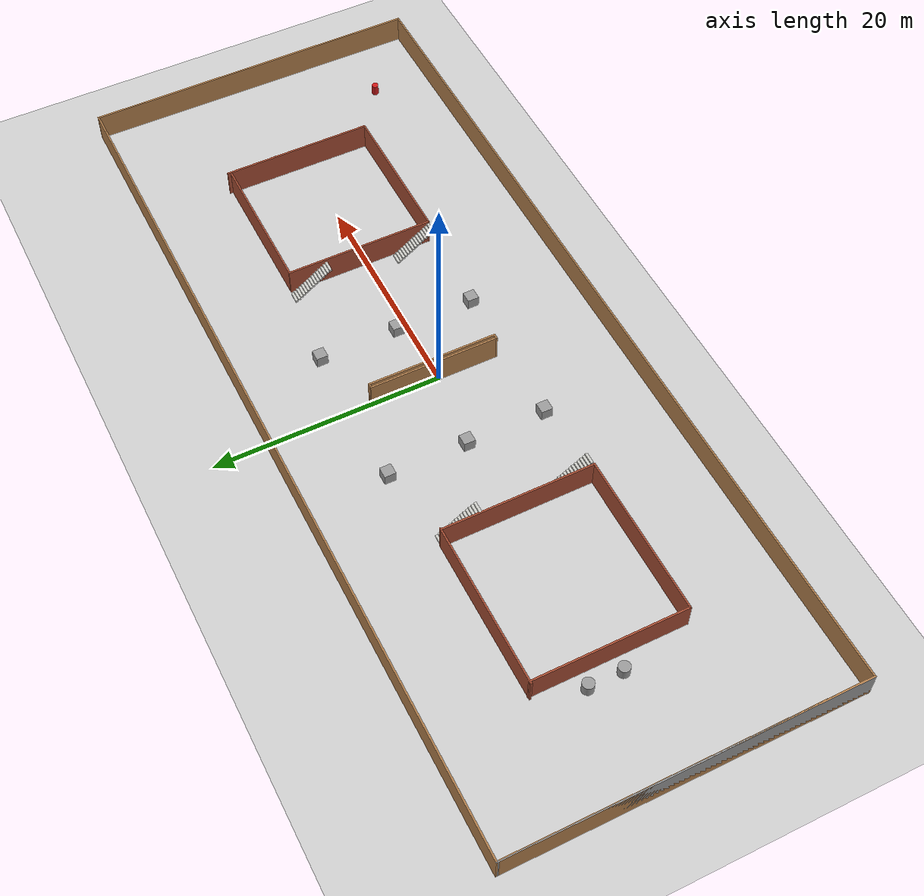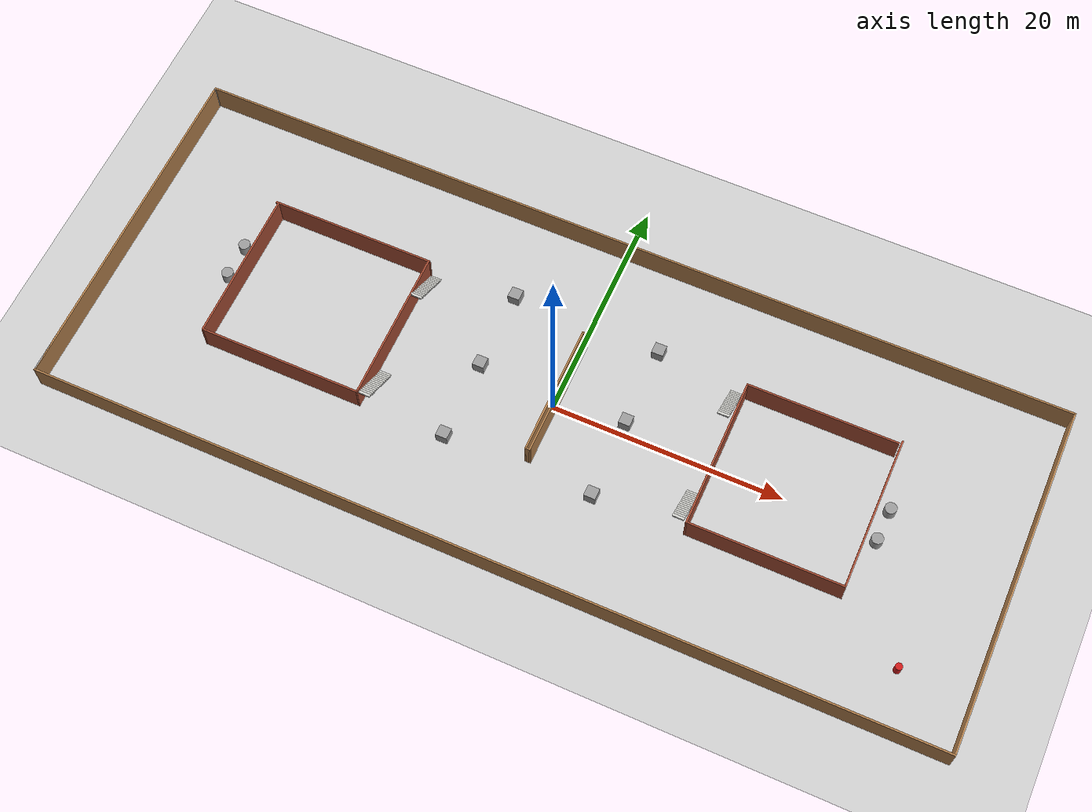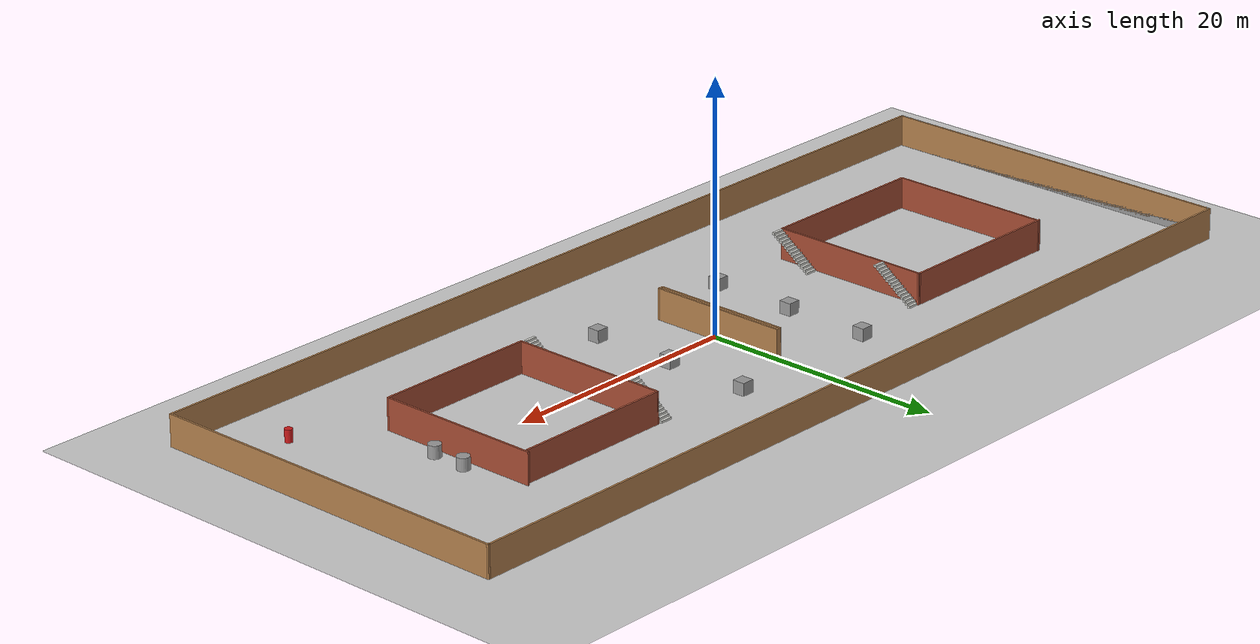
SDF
<sdf version="1.7">
 <world name="default">
  <physics name="4ms" type="ode">
   <max_step_size>0.004</max_step_size>
   <real_time_factor>1</real_time_factor>
   <real_time_update_rate>250</real_time_update_rate>
  </physics>
  <plugin name="gz::sim::systems::Physics" filename="gz-sim-physics-system"/>
  <plugin name="gz::sim::systems::UserCommands" filename="gz-sim-user-commands-system"/>
  <plugin name="gz::sim::systems::SceneBroadcaster" filename="gz-sim-scene-broadcaster-system"/>
  <plugin name="gz::sim::systems::Contact" filename="gz-sim-contact-system"/>
  <plugin filename="gz-sim-sensors-system" name="gz::sim::systems::Sensors">
   <render_engine>ogre2</render_engine>
  </plugin>
  <plugin filename="gz-sim-imu-system" name="gz::sim::systems::Imu"/>
  <plugin filename="gz-sim-navsat-system" name="gz::sim::systems::NavSat"/>
  <spherical_coordinates>
   <surface_model>EARTH_WGS84</surface_model>
   <world_frame_orientation>ENU</world_frame_orientation>
   <latitude_deg>47.478950</latitude_deg>
   <longitude_deg>19.057785</longitude_deg>
   <elevation>0</elevation>
   <heading_deg>0</heading_deg>
  </spherical_coordinates>
  <gravity>0 0 -9.8000000000000007</gravity>
  <magnetic_field>5.5644999999999998e-06 2.2875799999999999e-05 -4.2388400000000002e-05</magnetic_field>
  <atmosphere type="adiabatic"/>
  <scene>
   <ambient>0.400000006 0.400000006 0.400000006 1</ambient>
   <background>0.699999988 0.699999988 0.699999988 1</background>
   <shadows>true</shadows>
  </scene>
  <light name="sun" type="directional">
   <pose>0 0 10 0 -0 0</pose>
   <diffuse>0.8 0.8 0.8 1</diffuse>
   <specular>0.2 0.2 0.2 1</specular>
   <attenuation>
    <range>1000</range>
    <constant>0.9</constant>
    <linear>0.01</linear>
    <quadratic>0.001</quadratic>
   </attenuation>
   <direction>-0.5 0.1 -0.9</direction>
   <spot><inner_angle>0</inner_angle><outer_angle>0</outer_angle><falloff>0</falloff></spot>
  </light>
  <model name="ground_plane">
   <static>1</static>
   <link name="link">
    <collision name="collision">
     <geometry><plane><normal>0 0 1</normal><size>100 100</size></plane></geometry>
     <surface>
      <contact><collide_bitmask>65535</collide_bitmask></contact>
      <friction><ode><mu>100</mu><mu2>50</mu2></ode></friction>
     </surface>
    </collision>
    <visual name="visual">
     <cast_shadows>0</cast_shadows>
     <geometry><plane><normal>0 0 1</normal><size>100 100</size></plane></geometry>
     <material>
      <script><uri>file://media/materials/scripts/gazebo.material</uri><name>Gazebo/Grey</name></script>
     </material>
    </visual>
   </link>
  </model>
  <gravity>0 0 -9.8</gravity>
  <magnetic_field>6e-06 2.3e-05 -4.2e-05</magnetic_field>
  <atmosphere type="adiabatic"/>
  <physics type="ode">
   <max_step_size>0.001</max_step_size>
   <real_time_factor>1</real_time_factor>
   <real_time_update_rate>1000</real_time_update_rate>
  </physics>
  <scene><ambient>0.4 0.4 0.4 1</ambient><background>0.7 0.7 0.7 1</background><shadows>1</shadows></scene>
  <audio><device>default</device></audio>
  <spherical_coordinates>
   <surface_model>EARTH_WGS84</surface_model>
   <latitude_deg>0</latitude_deg>
   <longitude_deg>0</longitude_deg>
   <elevation>0</elevation>
   <heading_deg>0</heading_deg>
  </spherical_coordinates>
  <model name="World1">
   <pose>-0.188499 0.165577 0 0 -0 0</pose>
   <link name="Stairs_0">
    <visual name="Stairs_0_Visual_0">
     <pose>-13.679 -3.02062 0.083333 0 -0 0</pose>
     <geometry><box><size>1 0.233333 0.166667</size></box></geometry>
     <material>
      <script><uri>file://media/materials/scripts/gazebo.material</uri><name>Gazebo/CeilingTiled</name></script>
      <ambient>1 1 1 1</ambient>
     </material>
     <meta><layer>0</layer></meta>
    </visual>
    <collision name="Stairs_0_Collision_0">
     <geometry><box><size>1 0.233333 0.166667</size></box></geometry>
     <pose>-13.679 -3.02062 0.083333 0 -0 0</pose>
    </collision>
    <visual name="Stairs_0_Visual_1">
     <pose>-13.679 -3.25395 0.25 0 -0 0</pose>
     <geometry><box><size>1 0.233333 0.166667</size></box></geometry>
     <material>
      <script><uri>file://media/materials/scripts/gazebo.material</uri><name>Gazebo/CeilingTiled</name></script>
      <ambient>1 1 1 1</ambient>
     </material>
     <meta><layer>0</layer></meta>
    </visual>
    <collision name="Stairs_0_Collision_1">
     <geometry><box><size>1 0.233333 0.166667</size></box></geometry>
     <pose>-13.679 -3.25395 0.25 0 -0 0</pose>
    </collision>
    <visual name="Stairs_0_Visual_2">
     <pose>-13.679 -3.48728 0.416667 0 -0 0</pose>
     <geometry><box><size>1 0.233333 0.166667</size></box></geometry>
     <material>
      <script><uri>file://media/materials/scripts/gazebo.material</uri><name>Gazebo/CeilingTiled</name></script>
      <ambient>1 1 1 1</ambient>
     </material>
     <meta><layer>0</layer></meta>
    </visual>
    <collision name="Stairs_0_Collision_2">
     <geometry><box><size>1 0.233333 0.166667</size></box></geometry>
     <pose>-13.679 -3.48728 0.416667 0 -0 0</pose>
    </collision>
    <visual name="Stairs_0_Visual_3">
     <pose>-13.679 -3.72062 0.583333 0 -0 0</pose>
     <geometry><box><size>1 0.233333 0.166667</size></box></geometry>
     <material>
      <script><uri>file://media/materials/scripts/gazebo.material</uri><name>Gazebo/CeilingTiled</name></script>
      <ambient>1 1 1 1</ambient>
     </material>
     <meta><layer>0</layer></meta>
    </visual>
    <collision name="Stairs_0_Collision_3">
     <geometry><box><size>1 0.233333 0.166667</size></box></geometry>
     <pose>-13.679 -3.72062 0.583333 0 -0 0</pose>
    </collision>
    <visual name="Stairs_0_Visual_4">
     <pose>-13.679 -3.95395 0.75 0 -0 0</pose>
     <geometry><box><size>1 0.233333 0.166667</size></box></geometry>
     <material>
      <script><uri>file://media/materials/scripts/gazebo.material</uri><name>Gazebo/CeilingTiled</name></script>
      <ambient>1 1 1 1</ambient>
     </material>
     <meta><layer>0</layer></meta>
    </visual>
    <collision name="Stairs_0_Collision_4">
     <geometry><box><size>1 0.233333 0.166667</size></box></geometry>
     <pose>-13.679 -3.95395 0.75 0 -0 0</pose>
    </collision>
    <visual name="Stairs_0_Visual_5">
     <pose>-13.679 -4.18728 0.916667 0 -0 0</pose>
     <geometry><box><size>1 0.233333 0.166667</size></box></geometry>
     <material>
      <script><uri>file://media/materials/scripts/gazebo.material</uri><name>Gazebo/CeilingTiled</name></script>
      <ambient>1 1 1 1</ambient>
     </material>
     <meta><layer>0</layer></meta>
    </visual>
    <collision name="Stairs_0_Collision_5">
     <geometry><box><size>1 0.233333 0.166667</size></box></geometry>
     <pose>-13.679 -4.18728 0.916667 0 -0 0</pose>
    </collision>
    <visual name="Stairs_0_Visual_6">
     <pose>-13.679 -4.42061 1.08333 0 -0 0</pose>
     <geometry><box><size>1 0.233333 0.166667</size></box></geometry>
     <material>
      <script><uri>file://media/materials/scripts/gazebo.material</uri><name>Gazebo/CeilingTiled</name></script>
      <ambient>1 1 1 1</ambient>
     </material>
     <meta><layer>0</layer></meta>
    </visual>
    <collision name="Stairs_0_Collision_6">
     <geometry><box><size>1 0.233333 0.166667</size></box></geometry>
     <pose>-13.679 -4.42061 1.08333 0 -0 0</pose>
    </collision>
    <visual name="Stairs_0_Visual_7">
     <pose>-13.679 -4.65395 1.25 0 -0 0</pose>
     <geometry><box><size>1 0.233333 0.166667</size></box></geometry>
     <material>
      <script><uri>file://media/materials/scripts/gazebo.material</uri><name>Gazebo/CeilingTiled</name></script>
      <ambient>1 1 1 1</ambient>
     </material>
     <meta><layer>0</layer></meta>
    </visual>
    <collision name="Stairs_0_Collision_7">
     <geometry><box><size>1 0.233333 0.166667</size></box></geometry>
     <pose>-13.679 -4.65395 1.25 0 -0 0</pose>
    </collision>
    <visual name="Stairs_0_Visual_8">
     <pose>-13.679 -4.88728 1.41667 0 -0 0</pose>
     <geometry><box><size>1 0.233333 0.166667</size></box></geometry>
     <material>
      <script><uri>file://media/materials/scripts/gazebo.material</uri><name>Gazebo/CeilingTiled</name></script>
      <ambient>1 1 1 1</ambient>
     </material>
     <meta><layer>0</layer></meta>
    </visual>
    <collision name="Stairs_0_Collision_8">
     <geometry><box><size>1 0.233333 0.166667</size></box></geometry>
     <pose>-13.679 -4.88728 1.41667 0 -0 0</pose>
    </collision>
    <visual name="Stairs_0_Visual_9">
     <pose>-13.679 -5.12061 1.58333 0 -0 0</pose>
     <geometry><box><size>1 0.233333 0.166667</size></box></geometry>
     <material>
      <script><uri>file://media/materials/scripts/gazebo.material</uri><name>Gazebo/CeilingTiled</name></script>
      <ambient>1 1 1 1</ambient>
     </material>
     <meta><layer>0</layer></meta>
    </visual>
    <collision name="Stairs_0_Collision_9">
     <geometry><box><size>1 0.233333 0.166667</size></box></geometry>
     <pose>-13.679 -5.12061 1.58333 0 -0 0</pose>
    </collision>
    <visual name="Stairs_0_Visual_10">
     <pose>-13.679 -5.35395 1.75 0 -0 0</pose>
     <geometry><box><size>1 0.233333 0.166667</size></box></geometry>
     <material>
      <script><uri>file://media/materials/scripts/gazebo.material</uri><name>Gazebo/CeilingTiled</name></script>
      <ambient>1 1 1 1</ambient>
     </material>
     <meta><layer>0</layer></meta>
    </visual>
    <collision name="Stairs_0_Collision_10">
     <geometry><box><size>1 0.233333 0.166667</size></box></geometry>
     <pose>-13.679 -5.35395 1.75 0 -0 0</pose>
    </collision>
    <visual name="Stairs_0_Visual_11">
     <pose>-13.679 -5.58728 1.91667 0 -0 0</pose>
     <geometry><box><size>1 0.233333 0.166667</size></box></geometry>
     <material>
      <script><uri>file://media/materials/scripts/gazebo.material</uri><name>Gazebo/CeilingTiled</name></script>
      <ambient>1 1 1 1</ambient>
     </material>
     <meta><layer>0</layer></meta>
    </visual>
    <collision name="Stairs_0_Collision_11">
     <geometry><box><size>1 0.233333 0.166667</size></box></geometry>
     <pose>-13.679 -5.58728 1.91667 0 -0 0</pose>
    </collision>
    <visual name="Stairs_0_Visual_12">
     <pose>-13.679 -5.82062 2.08333 0 -0 0</pose>
     <geometry><box><size>1 0.233333 0.166667</size></box></geometry>
     <material>
      <script><uri>file://media/materials/scripts/gazebo.material</uri><name>Gazebo/CeilingTiled</name></script>
      <ambient>1 1 1 1</ambient>
     </material>
     <meta><layer>0</layer></meta>
    </visual>
    <collision name="Stairs_0_Collision_12">
     <geometry><box><size>1 0.233333 0.166667</size></box></geometry>
     <pose>-13.679 -5.82062 2.08333 0 -0 0</pose>
    </collision>
    <visual name="Stairs_0_Visual_13">
     <pose>-13.679 -6.05395 2.25 0 -0 0</pose>
     <geometry><box><size>1 0.233333 0.166667</size></box></geometry>
     <material>
      <script><uri>file://media/materials/scripts/gazebo.material</uri><name>Gazebo/CeilingTiled</name></script>
      <ambient>1 1 1 1</ambient>
     </material>
     <meta><layer>0</layer></meta>
    </visual>
    <collision name="Stairs_0_Collision_13">
     <geometry><box><size>1 0.233333 0.166667</size></box></geometry>
     <pose>-13.679 -6.05395 2.25 0 -0 0</pose>
    </collision>
    <visual name="Stairs_0_Visual_14">
     <pose>-13.679 -6.28728 2.41667 0 -0 0</pose>
     <geometry><box><size>1 0.233333 0.166667</size></box></geometry>
     <material>
      <script><uri>file://media/materials/scripts/gazebo.material</uri><name>Gazebo/CeilingTiled</name></script>
      <ambient>1 1 1 1</ambient>
     </material>
     <meta><layer>0</layer></meta>
    </visual>
    <collision name="Stairs_0_Collision_14">
     <geometry><box><size>1 0.233333 0.166667</size></box></geometry>
     <pose>-13.679 -6.28728 2.41667 0 -0 0</pose>
    </collision>
   </link>
   <link name="Stairs_1">
    <visual name="Stairs_1_Visual_0">
     <pose>-13.8205 6.81462 0.083333 0 -0 0</pose>
     <geometry><box><size>1 0.233333 0.166667</size></box></geometry>
     <material>
      <script><uri>file://media/materials/scripts/gazebo.material</uri><name>Gazebo/CeilingTiled</name></script>
      <ambient>1 1 1 1</ambient>
     </material>
     <meta><layer>0</layer></meta>
    </visual>
    <collision name="Stairs_1_Collision_0">
     <geometry><box><size>1 0.233333 0.166667</size></box></geometry>
     <pose>-13.8205 6.81462 0.083333 0 -0 0</pose>
    </collision>
    <visual name="Stairs_1_Visual_1">
     <pose>-13.8205 6.58128 0.25 0 -0 0</pose>
     <geometry><box><size>1 0.233333 0.166667</size></box></geometry>
     <material>
      <script><uri>file://media/materials/scripts/gazebo.material</uri><name>Gazebo/CeilingTiled</name></script>
      <ambient>1 1 1 1</ambient>
     </material>
     <meta><layer>0</layer></meta>
    </visual>
    <collision name="Stairs_1_Collision_1">
     <geometry><box><size>1 0.233333 0.166667</size></box></geometry>
     <pose>-13.8205 6.58128 0.25 0 -0 0</pose>
    </collision>
    <visual name="Stairs_1_Visual_2">
     <pose>-13.8205 6.34795 0.416667 0 -0 0</pose>
     <geometry><box><size>1 0.233333 0.166667</size></box></geometry>
     <material>
      <script><uri>file://media/materials/scripts/gazebo.material</uri><name>Gazebo/CeilingTiled</name></script>
      <ambient>1 1 1 1</ambient>
     </material>
     <meta><layer>0</layer></meta>
    </visual>
    <collision name="Stairs_1_Collision_2">
     <geometry><box><size>1 0.233333 0.166667</size></box></geometry>
     <pose>-13.8205 6.34795 0.416667 0 -0 0</pose>
    </collision>
    <visual name="Stairs_1_Visual_3">
     <pose>-13.8205 6.11462 0.583333 0 -0 0</pose>
     <geometry><box><size>1 0.233333 0.166667</size></box></geometry>
     <material>
      <script><uri>file://media/materials/scripts/gazebo.material</uri><name>Gazebo/CeilingTiled</name></script>
      <ambient>1 1 1 1</ambient>
     </material>
     <meta><layer>0</layer></meta>
    </visual>
    <collision name="Stairs_1_Collision_3">
     <geometry><box><size>1 0.233333 0.166667</size></box></geometry>
     <pose>-13.8205 6.11462 0.583333 0 -0 0</pose>
    </collision>
    <visual name="Stairs_1_Visual_4">
     <pose>-13.8205 5.88128 0.75 0 -0 0</pose>
     <geometry><box><size>1 0.233333 0.166667</size></box></geometry>
     <material>
      <script><uri>file://media/materials/scripts/gazebo.material</uri><name>Gazebo/CeilingTiled</name></script>
      <ambient>1 1 1 1</ambient>
     </material>
     <meta><layer>0</layer></meta>
    </visual>
    <collision name="Stairs_1_Collision_4">
     <geometry><box><size>1 0.233333 0.166667</size></box></geometry>
     <pose>-13.8205 5.88128 0.75 0 -0 0</pose>
    </collision>
    <visual name="Stairs_1_Visual_5">
     <pose>-13.8205 5.64795 0.916667 0 -0 0</pose>
     <geometry><box><size>1 0.233333 0.166667</size></box></geometry>
     <material>
      <script><uri>file://media/materials/scripts/gazebo.material</uri><name>Gazebo/CeilingTiled</name></script>
      <ambient>1 1 1 1</ambient>
     </material>
     <meta><layer>0</layer></meta>
    </visual>
    <collision name="Stairs_1_Collision_5">
     <geometry><box><size>1 0.233333 0.166667</size></box></geometry>
     <pose>-13.8205 5.64795 0.916667 0 -0 0</pose>
    </collision>
    <visual name="Stairs_1_Visual_6">
     <pose>-13.8205 5.41462 1.08333 0 -0 0</pose>
     <geometry><box><size>1 0.233333 0.166667</size></box></geometry>
     <material>
      <script><uri>file://media/materials/scripts/gazebo.material</uri><name>Gazebo/CeilingTiled</name></script>
      <ambient>1 1 1 1</ambient>
     </material>
     <meta><layer>0</layer></meta>
    </visual>
    <collision name="Stairs_1_Collision_6">
     <geometry><box><size>1 0.233333 0.166667</size></box></geometry>
     <pose>-13.8205 5.41462 1.08333 0 -0 0</pose>
    </collision>
    <visual name="Stairs_1_Visual_7">
     <pose>-13.8205 5.18128 1.25 0 -0 0</pose>
     <geometry><box><size>1 0.233333 0.166667</size></box></geometry>
     <material>
      <script><uri>file://media/materials/scripts/gazebo.material</uri><name>Gazebo/CeilingTiled</name></script>
      <ambient>1 1 1 1</ambient>
     </material>
     <meta><layer>0</layer></meta>
    </visual>
    <collision name="Stairs_1_Collision_7">
     <geometry><box><size>1 0.233333 0.166667</size></box></geometry>
     <pose>-13.8205 5.18128 1.25 0 -0 0</pose>
    </collision>
    <visual name="Stairs_1_Visual_8">
     <pose>-13.8205 4.94795 1.41667 0 -0 0</pose>
     <geometry><box><size>1 0.233333 0.166667</size></box></geometry>
     <material>
      <script><uri>file://media/materials/scripts/gazebo.material</uri><name>Gazebo/CeilingTiled</name></script>
      <ambient>1 1 1 1</ambient>
     </material>
     <meta><layer>0</layer></meta>
    </visual>
    <collision name="Stairs_1_Collision_8">
     <geometry><box><size>1 0.233333 0.166667</size></box></geometry>
     <pose>-13.8205 4.94795 1.41667 0 -0 0</pose>
    </collision>
    <visual name="Stairs_1_Visual_9">
     <pose>-13.8205 4.71462 1.58333 0 -0 0</pose>
     <geometry><box><size>1 0.233333 0.166667</size></box></geometry>
     <material>
      <script><uri>file://media/materials/scripts/gazebo.material</uri><name>Gazebo/CeilingTiled</name></script>
      <ambient>1 1 1 1</ambient>
     </material>
     <meta><layer>0</layer></meta>
    </visual>
    <collision name="Stairs_1_Collision_9">
     <geometry><box><size>1 0.233333 0.166667</size></box></geometry>
     <pose>-13.8205 4.71462 1.58333 0 -0 0</pose>
    </collision>
    <visual name="Stairs_1_Visual_10">
     <pose>-13.8205 4.48128 1.75 0 -0 0</pose>
     <geometry><box><size>1 0.233333 0.166667</size></box></geometry>
     <material>
      <script><uri>file://media/materials/scripts/gazebo.material</uri><name>Gazebo/CeilingTiled</name></script>
      <ambient>1 1 1 1</ambient>
     </material>
     <meta><layer>0</layer></meta>
    </visual>
    <collision name="Stairs_1_Collision_10">
     <geometry><box><size>1 0.233333 0.166667</size></box></geometry>
     <pose>-13.8205 4.48128 1.75 0 -0 0</pose>
    </collision>
    <visual name="Stairs_1_Visual_11">
     <pose>-13.8205 4.24795 1.91667 0 -0 0</pose>
     <geometry><box><size>1 0.233333 0.166667</size></box></geometry>
     <material>
      <script><uri>file://media/materials/scripts/gazebo.material</uri><name>Gazebo/CeilingTiled</name></script>
      <ambient>1 1 1 1</ambient>
     </material>
     <meta><layer>0</layer></meta>
    </visual>
    <collision name="Stairs_1_Collision_11">
     <geometry><box><size>1 0.233333 0.166667</size></box></geometry>
     <pose>-13.8205 4.24795 1.91667 0 -0 0</pose>
    </collision>
    <visual name="Stairs_1_Visual_12">
     <pose>-13.8205 4.01462 2.08333 0 -0 0</pose>
     <geometry><box><size>1 0.233333 0.166667</size></box></geometry>
     <material>
      <script><uri>file://media/materials/scripts/gazebo.material</uri><name>Gazebo/CeilingTiled</name></script>
      <ambient>1 1 1 1</ambient>
     </material>
     <meta><layer>0</layer></meta>
    </visual>
    <collision name="Stairs_1_Collision_12">
     <geometry><box><size>1 0.233333 0.166667</size></box></geometry>
     <pose>-13.8205 4.01462 2.08333 0 -0 0</pose>
    </collision>
    <visual name="Stairs_1_Visual_13">
     <pose>-13.8205 3.78128 2.25 0 -0 0</pose>
     <geometry><box><size>1 0.233333 0.166667</size></box></geometry>
     <material>
      <script><uri>file://media/materials/scripts/gazebo.material</uri><name>Gazebo/CeilingTiled</name></script>
      <ambient>1 1 1 1</ambient>
     </material>
     <meta><layer>0</layer></meta>
    </visual>
    <collision name="Stairs_1_Collision_13">
     <geometry><box><size>1 0.233333 0.166667</size></box></geometry>
     <pose>-13.8205 3.78128 2.25 0 -0 0</pose>
    </collision>
    <visual name="Stairs_1_Visual_14">
     <pose>-13.8205 3.54795 2.41667 0 -0 0</pose>
     <geometry><box><size>1 0.233333 0.166667</size></box></geometry>
     <material>
      <script><uri>file://media/materials/scripts/gazebo.material</uri><name>Gazebo/CeilingTiled</name></script>
      <ambient>1 1 1 1</ambient>
     </material>
     <meta><layer>0</layer></meta>
    </visual>
    <collision name="Stairs_1_Collision_14">
     <geometry><box><size>1 0.233333 0.166667</size></box></geometry>
     <pose>-13.8205 3.54795 2.41667 0 -0 0</pose>
    </collision>
   </link>
   <link name="Stairs_2">
    <visual name="Stairs_2_Visual_0">
     <pose>13.3502 7.02689 0.083333 0 -0 0</pose>
     <geometry><box><size>1 0.233333 0.166667</size></box></geometry>
     <material>
      <script><uri>file://media/materials/scripts/gazebo.material</uri><name>Gazebo/CeilingTiled</name></script>
      <ambient>1 1 1 1</ambient>
     </material>
     <meta><layer>0</layer></meta>
    </visual>
    <collision name="Stairs_2_Collision_0">
     <geometry><box><size>1 0.233333 0.166667</size></box></geometry>
     <pose>13.3502 7.02689 0.083333 0 -0 0</pose>
    </collision>
    <visual name="Stairs_2_Visual_1">
     <pose>13.3502 6.79355 0.25 0 -0 0</pose>
     <geometry><box><size>1 0.233333 0.166667</size></box></geometry>
     <material>
      <script><uri>file://media/materials/scripts/gazebo.material</uri><name>Gazebo/CeilingTiled</name></script>
      <ambient>1 1 1 1</ambient>
     </material>
     <meta><layer>0</layer></meta>
    </visual>
    <collision name="Stairs_2_Collision_1">
     <geometry><box><size>1 0.233333 0.166667</size></box></geometry>
     <pose>13.3502 6.79355 0.25 0 -0 0</pose>
    </collision>
    <visual name="Stairs_2_Visual_2">
     <pose>13.3502 6.56022 0.416667 0 -0 0</pose>
     <geometry><box><size>1 0.233333 0.166667</size></box></geometry>
     <material>
      <script><uri>file://media/materials/scripts/gazebo.material</uri><name>Gazebo/CeilingTiled</name></script>
      <ambient>1 1 1 1</ambient>
     </material>
     <meta><layer>0</layer></meta>
    </visual>
    <collision name="Stairs_2_Collision_2">
     <geometry><box><size>1 0.233333 0.166667</size></box></geometry>
     <pose>13.3502 6.56022 0.416667 0 -0 0</pose>
    </collision>
    <visual name="Stairs_2_Visual_3">
     <pose>13.3502 6.32689 0.583333 0 -0 0</pose>
     <geometry><box><size>1 0.233333 0.166667</size></box></geometry>
     <material>
      <script><uri>file://media/materials/scripts/gazebo.material</uri><name>Gazebo/CeilingTiled</name></script>
      <ambient>1 1 1 1</ambient>
     </material>
     <meta><layer>0</layer></meta>
    </visual>
    <collision name="Stairs_2_Collision_3">
     <geometry><box><size>1 0.233333 0.166667</size></box></geometry>
     <pose>13.3502 6.32689 0.583333 0 -0 0</pose>
    </collision>
    <visual name="Stairs_2_Visual_4">
     <pose>13.3502 6.09355 0.75 0 -0 0</pose>
     <geometry><box><size>1 0.233333 0.166667</size></box></geometry>
     <material>
      <script><uri>file://media/materials/scripts/gazebo.material</uri><name>Gazebo/CeilingTiled</name></script>
      <ambient>1 1 1 1</ambient>
     </material>
     <meta><layer>0</layer></meta>
    </visual>
    <collision name="Stairs_2_Collision_4">
     <geometry><box><size>1 0.233333 0.166667</size></box></geometry>
     <pose>13.3502 6.09355 0.75 0 -0 0</pose>
    </collision>
    <visual name="Stairs_2_Visual_5">
     <pose>13.3502 5.86022 0.916667 0 -0 0</pose>
     <geometry><box><size>1 0.233333 0.166667</size></box></geometry>
     <material>
      <script><uri>file://media/materials/scripts/gazebo.material</uri><name>Gazebo/CeilingTiled</name></script>
      <ambient>1 1 1 1</ambient>
     </material>
     <meta><layer>0</layer></meta>
    </visual>
    <collision name="Stairs_2_Collision_5">
     <geometry><box><size>1 0.233333 0.166667</size></box></geometry>
     <pose>13.3502 5.86022 0.916667 0 -0 0</pose>
    </collision>
    <visual name="Stairs_2_Visual_6">
     <pose>13.3502 5.62689 1.08333 0 -0 0</pose>
     <geometry><box><size>1 0.233333 0.166667</size></box></geometry>
     <material>
      <script><uri>file://media/materials/scripts/gazebo.material</uri><name>Gazebo/CeilingTiled</name></script>
      <ambient>1 1 1 1</ambient>
     </material>
     <meta><layer>0</layer></meta>
    </visual>
    <collision name="Stairs_2_Collision_6">
     <geometry><box><size>1 0.233333 0.166667</size></box></geometry>
     <pose>13.3502 5.62689 1.08333 0 -0 0</pose>
    </collision>
    <visual name="Stairs_2_Visual_7">
     <pose>13.3502 5.39355 1.25 0 -0 0</pose>
     <geometry><box><size>1 0.233333 0.166667</size></box></geometry>
     <material>
      <script><uri>file://media/materials/scripts/gazebo.material</uri><name>Gazebo/CeilingTiled</name></script>
      <ambient>1 1 1 1</ambient>
     </material>
     <meta><layer>0</layer></meta>
    </visual>
    <collision name="Stairs_2_Collision_7">
     <geometry><box><size>1 0.233333 0.166667</size></box></geometry>
     <pose>13.3502 5.39355 1.25 0 -0 0</pose>
    </collision>
    <visual name="Stairs_2_Visual_8">
     <pose>13.3502 5.16022 1.41667 0 -0 0</pose>
     <geometry><box><size>1 0.233333 0.166667</size></box></geometry>
     <material>
      <script><uri>file://media/materials/scripts/gazebo.material</uri><name>Gazebo/CeilingTiled</name></script>
      <ambient>1 1 1 1</ambient>
     </material>
     <meta><layer>0</layer></meta>
    </visual>
    <collision name="Stairs_2_Collision_8">
     <geometry><box><size>1 0.233333 0.166667</size></box></geometry>
     <pose>13.3502 5.16022 1.41667 0 -0 0</pose>
    </collision>
    <visual name="Stairs_2_Visual_9">
     <pose>13.3502 4.92689 1.58333 0 -0 0</pose>
     <geometry><box><size>1 0.233333 0.166667</size></box></geometry>
     <material>
      <script><uri>file://media/materials/scripts/gazebo.material</uri><name>Gazebo/CeilingTiled</name></script>
      <ambient>1 1 1 1</ambient>
     </material>
     <meta><layer>0</layer></meta>
    </visual>
    <collision name="Stairs_2_Collision_9">
     <geometry><box><size>1 0.233333 0.166667</size></box></geometry>
     <pose>13.3502 4.92689 1.58333 0 -0 0</pose>
    </collision>
    <visual name="Stairs_2_Visual_10">
     <pose>13.3502 4.69355 1.75 0 -0 0</pose>
     <geometry><box><size>1 0.233333 0.166667</size></box></geometry>
     <material>
      <script><uri>file://media/materials/scripts/gazebo.material</uri><name>Gazebo/CeilingTiled</name></script>
      <ambient>1 1 1 1</ambient>
     </material>
     <meta><layer>0</layer></meta>
    </visual>
    <collision name="Stairs_2_Collision_10">
     <geometry><box><size>1 0.233333 0.166667</size></box></geometry>
     <pose>13.3502 4.69355 1.75 0 -0 0</pose>
    </collision>
    <visual name="Stairs_2_Visual_11">
     <pose>13.3502 4.46022 1.91667 0 -0 0</pose>
     <geometry><box><size>1 0.233333 0.166667</size></box></geometry>
     <material>
      <script><uri>file://media/materials/scripts/gazebo.material</uri><name>Gazebo/CeilingTiled</name></script>
      <ambient>1 1 1 1</ambient>
     </material>
     <meta><layer>0</layer></meta>
    </visual>
    <collision name="Stairs_2_Collision_11">
     <geometry><box><size>1 0.233333 0.166667</size></box></geometry>
     <pose>13.3502 4.46022 1.91667 0 -0 0</pose>
    </collision>
    <visual name="Stairs_2_Visual_12">
     <pose>13.3502 4.22689 2.08333 0 -0 0</pose>
     <geometry><box><size>1 0.233333 0.166667</size></box></geometry>
     <material>
      <script><uri>file://media/materials/scripts/gazebo.material</uri><name>Gazebo/CeilingTiled</name></script>
      <ambient>1 1 1 1</ambient>
     </material>
     <meta><layer>0</layer></meta>
    </visual>
    <collision name="Stairs_2_Collision_12">
     <geometry><box><size>1 0.233333 0.166667</size></box></geometry>
     <pose>13.3502 4.22689 2.08333 0 -0 0</pose>
    </collision>
    <visual name="Stairs_2_Visual_13">
     <pose>13.3502 3.99355 2.25 0 -0 0</pose>
     <geometry><box><size>1 0.233333 0.166667</size></box></geometry>
     <material>
      <script><uri>file://media/materials/scripts/gazebo.material</uri><name>Gazebo/CeilingTiled</name></script>
      <ambient>1 1 1 1</ambient>
     </material>
     <meta><layer>0</layer></meta>
    </visual>
    <collision name="Stairs_2_Collision_13">
     <geometry><box><size>1 0.233333 0.166667</size></box></geometry>
     <pose>13.3502 3.99355 2.25 0 -0 0</pose>
    </collision>
    <visual name="Stairs_2_Visual_14">
     <pose>13.3502 3.76022 2.41667 0 -0 0</pose>
     <geometry><box><size>1 0.233333 0.166667</size></box></geometry>
     <material>
      <script><uri>file://media/materials/scripts/gazebo.material</uri><name>Gazebo/CeilingTiled</name></script>
      <ambient>1 1 1 1</ambient>
     </material>
     <meta><layer>0</layer></meta>
    </visual>
    <collision name="Stairs_2_Collision_14">
     <geometry><box><size>1 0.233333 0.166667</size></box></geometry>
     <pose>13.3502 3.76022 2.41667 0 -0 0</pose>
    </collision>
   </link>
   <link name="Stairs_3">
    <visual name="Stairs_3_Visual_0">
     <pose>13.4209 -2.66683 0.083333 0 -0 0</pose>
     <geometry><box><size>1 0.233333 0.166667</size></box></geometry>
     <material>
      <script><uri>file://media/materials/scripts/gazebo.material</uri><name>Gazebo/CeilingTiled</name></script>
      <ambient>1 1 1 1</ambient>
     </material>
     <meta><layer>0</layer></meta>
    </visual>
    <collision name="Stairs_3_Collision_0">
     <geometry><box><size>1 0.233333 0.166667</size></box></geometry>
     <pose>13.4209 -2.66683 0.083333 0 -0 0</pose>
    </collision>
    <visual name="Stairs_3_Visual_1">
     <pose>13.4209 -2.90016 0.25 0 -0 0</pose>
     <geometry><box><size>1 0.233333 0.166667</size></box></geometry>
     <material>
      <script><uri>file://media/materials/scripts/gazebo.material</uri><name>Gazebo/CeilingTiled</name></script>
      <ambient>1 1 1 1</ambient>
     </material>
     <meta><layer>0</layer></meta>
    </visual>
    <collision name="Stairs_3_Collision_1">
     <geometry><box><size>1 0.233333 0.166667</size></box></geometry>
     <pose>13.4209 -2.90016 0.25 0 -0 0</pose>
    </collision>
    <visual name="Stairs_3_Visual_2">
     <pose>13.4209 -3.1335 0.416667 0 -0 0</pose>
     <geometry><box><size>1 0.233333 0.166667</size></box></geometry>
     <material>
      <script><uri>file://media/materials/scripts/gazebo.material</uri><name>Gazebo/CeilingTiled</name></script>
      <ambient>1 1 1 1</ambient>
     </material>
     <meta><layer>0</layer></meta>
    </visual>
    <collision name="Stairs_3_Collision_2">
     <geometry><box><size>1 0.233333 0.166667</size></box></geometry>
     <pose>13.4209 -3.1335 0.416667 0 -0 0</pose>
    </collision>
    <visual name="Stairs_3_Visual_3">
     <pose>13.4209 -3.36683 0.583333 0 -0 0</pose>
     <geometry><box><size>1 0.233333 0.166667</size></box></geometry>
     <material>
      <script><uri>file://media/materials/scripts/gazebo.material</uri><name>Gazebo/CeilingTiled</name></script>
      <ambient>1 1 1 1</ambient>
     </material>
     <meta><layer>0</layer></meta>
    </visual>
    <collision name="Stairs_3_Collision_3">
     <geometry><box><size>1 0.233333 0.166667</size></box></geometry>
     <pose>13.4209 -3.36683 0.583333 0 -0 0</pose>
    </collision>
    <visual name="Stairs_3_Visual_4">
     <pose>13.4209 -3.60016 0.75 0 -0 0</pose>
     <geometry><box><size>1 0.233333 0.166667</size></box></geometry>
     <material>
      <script><uri>file://media/materials/scripts/gazebo.material</uri><name>Gazebo/CeilingTiled</name></script>
      <ambient>1 1 1 1</ambient>
     </material>
     <meta><layer>0</layer></meta>
    </visual>
    <collision name="Stairs_3_Collision_4">
     <geometry><box><size>1 0.233333 0.166667</size></box></geometry>
     <pose>13.4209 -3.60016 0.75 0 -0 0</pose>
    </collision>
    <visual name="Stairs_3_Visual_5">
     <pose>13.4209 -3.8335 0.916667 0 -0 0</pose>
     <geometry><box><size>1 0.233333 0.166667</size></box></geometry>
     <material>
      <script><uri>file://media/materials/scripts/gazebo.material</uri><name>Gazebo/CeilingTiled</name></script>
      <ambient>1 1 1 1</ambient>
     </material>
     <meta><layer>0</layer></meta>
    </visual>
    <collision name="Stairs_3_Collision_5">
     <geometry><box><size>1 0.233333 0.166667</size></box></geometry>
     <pose>13.4209 -3.8335 0.916667 0 -0 0</pose>
    </collision>
    <visual name="Stairs_3_Visual_6">
     <pose>13.4209 -4.06683 1.08333 0 -0 0</pose>
     <geometry><box><size>1 0.233333 0.166667</size></box></geometry>
     <material>
      <script><uri>file://media/materials/scripts/gazebo.material</uri><name>Gazebo/CeilingTiled</name></script>
      <ambient>1 1 1 1</ambient>
     </material>
     <meta><layer>0</layer></meta>
    </visual>
    <collision name="Stairs_3_Collision_6">
     <geometry><box><size>1 0.233333 0.166667</size></box></geometry>
     <pose>13.4209 -4.06683 1.08333 0 -0 0</pose>
    </collision>
    <visual name="Stairs_3_Visual_7">
     <pose>13.4209 -4.30016 1.25 0 -0 0</pose>
     <geometry><box><size>1 0.233333 0.166667</size></box></geometry>
     <material>
      <script><uri>file://media/materials/scripts/gazebo.material</uri><name>Gazebo/CeilingTiled</name></script>
      <ambient>1 1 1 1</ambient>
     </material>
     <meta><layer>0</layer></meta>
    </visual>
    <collision name="Stairs_3_Collision_7">
     <geometry><box><size>1 0.233333 0.166667</size></box></geometry>
     <pose>13.4209 -4.30016 1.25 0 -0 0</pose>
    </collision>
    <visual name="Stairs_3_Visual_8">
     <pose>13.4209 -4.5335 1.41667 0 -0 0</pose>
     <geometry><box><size>1 0.233333 0.166667</size></box></geometry>
     <material>
      <script><uri>file://media/materials/scripts/gazebo.material</uri><name>Gazebo/CeilingTiled</name></script>
      <ambient>1 1 1 1</ambient>
     </material>
     <meta><layer>0</layer></meta>
    </visual>
    <collision name="Stairs_3_Collision_8">
     <geometry><box><size>1 0.233333 0.166667</size></box></geometry>
     <pose>13.4209 -4.5335 1.41667 0 -0 0</pose>
    </collision>
    <visual name="Stairs_3_Visual_9">
     <pose>13.4209 -4.76683 1.58333 0 -0 0</pose>
     <geometry><box><size>1 0.233333 0.166667</size></box></geometry>
     <material>
      <script><uri>file://media/materials/scripts/gazebo.material</uri><name>Gazebo/CeilingTiled</name></script>
      <ambient>1 1 1 1</ambient>
     </material>
     <meta><layer>0</layer></meta>
    </visual>
    <collision name="Stairs_3_Collision_9">
     <geometry><box><size>1 0.233333 0.166667</size></box></geometry>
     <pose>13.4209 -4.76683 1.58333 0 -0 0</pose>
    </collision>
    <visual name="Stairs_3_Visual_10">
     <pose>13.4209 -5.00016 1.75 0 -0 0</pose>
     <geometry><box><size>1 0.233333 0.166667</size></box></geometry>
     <material>
      <script><uri>file://media/materials/scripts/gazebo.material</uri><name>Gazebo/CeilingTiled</name></script>
      <ambient>1 1 1 1</ambient>
     </material>
     <meta><layer>0</layer></meta>
    </visual>
    <collision name="Stairs_3_Collision_10">
     <geometry><box><size>1 0.233333 0.166667</size></box></geometry>
     <pose>13.4209 -5.00016 1.75 0 -0 0</pose>
    </collision>
    <visual name="Stairs_3_Visual_11">
     <pose>13.4209 -5.2335 1.91667 0 -0 0</pose>
     <geometry><box><size>1 0.233333 0.166667</size></box></geometry>
     <material>
      <script><uri>file://media/materials/scripts/gazebo.material</uri><name>Gazebo/CeilingTiled</name></script>
      <ambient>1 1 1 1</ambient>
     </material>
     <meta><layer>0</layer></meta>
    </visual>
    <collision name="Stairs_3_Collision_11">
     <geometry><box><size>1 0.233333 0.166667</size></box></geometry>
     <pose>13.4209 -5.2335 1.91667 0 -0 0</pose>
    </collision>
    <visual name="Stairs_3_Visual_12">
     <pose>13.4209 -5.46683 2.08333 0 -0 0</pose>
     <geometry><box><size>1 0.233333 0.166667</size></box></geometry>
     <material>
      <script><uri>file://media/materials/scripts/gazebo.material</uri><name>Gazebo/CeilingTiled</name></script>
      <ambient>1 1 1 1</ambient>
     </material>
     <meta><layer>0</layer></meta>
    </visual>
    <collision name="Stairs_3_Collision_12">
     <geometry><box><size>1 0.233333 0.166667</size></box></geometry>
     <pose>13.4209 -5.46683 2.08333 0 -0 0</pose>
    </collision>
    <visual name="Stairs_3_Visual_13">
     <pose>13.4209 -5.70016 2.25 0 -0 0</pose>
     <geometry><box><size>1 0.233333 0.166667</size></box></geometry>
     <material>
      <script><uri>file://media/materials/scripts/gazebo.material</uri><name>Gazebo/CeilingTiled</name></script>
      <ambient>1 1 1 1</ambient>
     </material>
     <meta><layer>0</layer></meta>
    </visual>
    <collision name="Stairs_3_Collision_13">
     <geometry><box><size>1 0.233333 0.166667</size></box></geometry>
     <pose>13.4209 -5.70016 2.25 0 -0 0</pose>
    </collision>
    <visual name="Stairs_3_Visual_14">
     <pose>13.4209 -5.9335 2.41667 0 -0 0</pose>
     <geometry><box><size>1 0.233333 0.166667</size></box></geometry>
     <material>
      <script><uri>file://media/materials/scripts/gazebo.material</uri><name>Gazebo/CeilingTiled</name></script>
      <ambient>1 1 1 1</ambient>
     </material>
     <meta><layer>0</layer></meta>
    </visual>
    <collision name="Stairs_3_Collision_14">
     <geometry><box><size>1 0.233333 0.166667</size></box></geometry>
     <pose>13.4209 -5.9335 2.41667 0 -0 0</pose>
    </collision>
   </link>
   <link name="Wall_22">
    <collision name="Wall_22_Collision">
     <geometry><box><size>30.25 0.15 2.5</size></box></geometry>
     <pose>0 0 1.25 0 -0 0</pose>
    </collision>
    <visual name="Wall_22_Visual">
     <pose>0 0 1.25 0 -0 0</pose>
     <geometry><box><size>30.25 0.15 2.5</size></box></geometry>
     <material>
      <script><uri>file://media/materials/scripts/gazebo.material</uri><name>Gazebo/Wood</name></script>
      <ambient>1 1 1 1</ambient>
     </material>
     <meta><layer>0</layer></meta>
    </visual>
    <pose>-39.05 -0.125 0 0 -0 -1.5708</pose>
   </link>
   <link name="Wall_23">
    <collision name="Wall_23_Collision">
     <geometry><box><size>78.25 0.15 2.5</size></box></geometry>
     <pose>0 0 1.25 0 -0 0</pose>
    </collision>
    <visual name="Wall_23_Visual">
     <pose>0 0 1.25 0 -0 0</pose>
     <geometry><box><size>78.25 0.15 2.5</size></box></geometry>
     <material>
      <script><uri>file://media/materials/scripts/gazebo.material</uri><name>Gazebo/Wood</name></script>
      <ambient>1 1 1 1</ambient>
     </material>
     <meta><layer>0</layer></meta>
    </visual>
    <pose>0 -15.175 0 0 -0 0</pose>
   </link>
   <link name="Wall_24">
    <collision name="Wall_24_Collision">
     <geometry><box><size>30.5 0.15 2.5</size></box></geometry>
     <pose>0 0 1.25 0 -0 0</pose>
    </collision>
    <visual name="Wall_24_Visual">
     <pose>0 0 1.25 0 -0 0</pose>
     <geometry><box><size>30.5 0.15 2.5</size></box></geometry>
     <material>
      <script><uri>file://media/materials/scripts/gazebo.material</uri><name>Gazebo/Wood</name></script>
      <ambient>1 1 1 1</ambient>
     </material>
     <meta><layer>0</layer></meta>
    </visual>
    <pose>39.05 0 0 0 -0 1.5708</pose>
   </link>
   <link name="Wall_25">
    <collision name="Wall_25_Collision">
     <geometry><box><size>78.2504 0.15 2.5</size></box></geometry>
     <pose>0 0 1.25 0 -0 0</pose>
    </collision>
    <visual name="Wall_25_Visual">
     <pose>0 0 1.25 0 -0 0</pose>
     <geometry><box><size>78.2504 0.15 2.5</size></box></geometry>
     <material>
      <script><uri>file://media/materials/scripts/gazebo.material</uri><name>Gazebo/Wood</name></script>
      <ambient>1 1 1 1</ambient>
     </material>
     <meta><layer>0</layer></meta>
    </visual>
    <pose>0 15.175 0 0 -0 3.14159</pose>
   </link>
   <link name="Wall_26">
    <collision name="Wall_26_Collision">
     <geometry><box><size>30.5 0.15 2.5</size></box></geometry>
     <pose>0 0 1.25 0 -0 0</pose>
    </collision>
    <visual name="Wall_26_Visual">
     <pose>0 0 1.25 0 -0 0</pose>
     <geometry><box><size>30.5 0.15 2.5</size></box></geometry>
     <material>
      <script><uri>file://media/materials/scripts/gazebo.material</uri><name>Gazebo/Grey</name></script>
      <ambient>1 1 1 1</ambient>
     </material>
     <meta><layer>0</layer></meta>
    </visual>
    <pose>-39.05 0 0 0 -0 -1.5708</pose>
   </link>
   <link name="Wall_29">
    <collision name="Wall_29_Collision">
     <geometry><box><size>13.5 0.15 2.5</size></box></geometry>
     <pose>0 0 1.25 0 -0 0</pose>
    </collision>
    <visual name="Wall_29_Visual">
     <pose>0 0 1.25 0 -0 0</pose>
     <geometry><box><size>13.5 0.15 2.5</size></box></geometry>
     <material>
      <script><uri>file://media/materials/scripts/gazebo.material</uri><name>Gazebo/Bricks</name></script>
      <ambient>1 1 1 1</ambient>
     </material>
     <meta><layer>0</layer></meta>
    </visual>
    <pose>-28.4394 0.288495 0 0 -0 -1.5708</pose>
   </link>
   <link name="Wall_30">
    <collision name="Wall_30_Collision">
     <geometry><box><size>14.25 0.15 2.5</size></box></geometry>
     <pose>0 0 1.25 0 -0 0</pose>
    </collision>
    <visual name="Wall_30_Visual">
     <pose>0 0 1.25 0 -0 0</pose>
     <geometry><box><size>14.25 0.15 2.5</size></box></geometry>
     <material>
      <script><uri>file://media/materials/scripts/gazebo.material</uri><name>Gazebo/Bricks</name></script>
      <ambient>1 1 1 1</ambient>
     </material>
     <meta><layer>0</layer></meta>
    </visual>
    <pose>-21.3894 -6.3865 0 0 -0 0</pose>
   </link>
   <link name="Wall_31">
    <collision name="Wall_31_Collision">
     <geometry><box><size>13.467 0.15 2.5</size></box></geometry>
     <pose>0 0 1.25 0 -0 0</pose>
    </collision>
    <visual name="Wall_31_Visual">
     <pose>0 0 1.25 0 -0 0</pose>
     <geometry><box><size>13.467 0.15 2.5</size></box></geometry>
     <material>
      <script><uri>file://media/materials/scripts/gazebo.material</uri><name>Gazebo/Bricks</name></script>
      <ambient>1 1 1 1</ambient>
     </material>
     <meta><layer>0</layer></meta>
    </visual>
    <pose>-14.3394 0.271981 0 0 -0 1.5708</pose>
   </link>
   <link name="Wall_32">
    <collision name="Wall_32_Collision">
     <geometry><box><size>14.5 0.15 2.5</size></box></geometry>
     <pose>0 0 1.25 0 -0 0</pose>
    </collision>
    <visual name="Wall_32_Visual">
     <pose>0 0 1.25 0 -0 0</pose>
     <geometry><box><size>14.5 0.15 2.5</size></box></geometry>
     <material>
      <script><uri>file://media/materials/scripts/gazebo.material</uri><name>Gazebo/Bricks</name></script>
      <ambient>1 1 1 1</ambient>
     </material>
     <meta><layer>0</layer></meta>
    </visual>
    <pose>-21.4436 6.93047 0 0 -0 3.14159</pose>
   </link>
   <link name="Wall_37">
    <collision name="Wall_37_Collision">
     <geometry><box><size>13.5 0.15 2.5</size></box></geometry>
     <pose>0 0 1.25 0 -0 0</pose>
    </collision>
    <visual name="Wall_37_Visual">
     <pose>0 0 1.25 0 -0 0</pose>
     <geometry><box><size>13.5 0.15 2.5</size></box></geometry>
     <material>
      <script><uri>file://media/materials/scripts/gazebo.material</uri><name>Gazebo/Bricks</name></script>
      <ambient>1 1 1 1</ambient>
     </material>
     <meta><layer>0</layer></meta>
    </visual>
    <pose>27.2464 0.571523 0 0 -0 -1.5708</pose>
   </link>
   <link name="Wall_38">
    <collision name="Wall_38_Collision">
     <geometry><box><size>13.25 0.15 2.5</size></box></geometry>
     <pose>0 0 1.25 0 -0 0</pose>
    </collision>
    <visual name="Wall_38_Visual">
     <pose>0 0 1.25 0 -0 0</pose>
     <geometry><box><size>13.25 0.15 2.5</size></box></geometry>
     <material>
      <script><uri>file://media/materials/scripts/gazebo.material</uri><name>Gazebo/Bricks</name></script>
      <ambient>1 1 1 1</ambient>
     </material>
     <meta><layer>0</layer></meta>
    </visual>
    <pose>20.6964 -6.10348 0 0 -0 3.14159</pose>
   </link>
   <link name="Wall_39">
    <collision name="Wall_39_Collision">
     <geometry><box><size>13.25 0.15 2.5</size></box></geometry>
     <pose>0 0 1.25 0 -0 0</pose>
    </collision>
    <visual name="Wall_39_Visual">
     <pose>0 0 1.25 0 -0 0</pose>
     <geometry><box><size>13.25 0.15 2.5</size></box></geometry>
     <material>
      <script><uri>file://media/materials/scripts/gazebo.material</uri><name>Gazebo/Bricks</name></script>
      <ambient>1 1 1 1</ambient>
     </material>
     <meta><layer>0</layer></meta>
    </visual>
    <pose>14.1464 0.446523 0 0 -0 1.5708</pose>
   </link>
   <link name="Wall_40">
    <collision name="Wall_40_Collision">
     <geometry><box><size>13 0.15 2.5</size></box></geometry>
     <pose>0 0 1.25 0 -0 0</pose>
    </collision>
    <visual name="Wall_40_Visual">
     <pose>0 0 1.25 0 -0 0</pose>
     <geometry><box><size>13 0.15 2.5</size></box></geometry>
     <material>
      <script><uri>file://media/materials/scripts/gazebo.material</uri><name>Gazebo/Bricks</name></script>
      <ambient>1 1 1 1</ambient>
     </material>
     <meta><layer>0</layer></meta>
    </visual>
    <pose>20.5714 6.99652 0 0 -0 0</pose>
   </link>
   <link name="Wall_55">
    <collision name="Wall_55_Collision">
     <geometry><box><size>11.5 0.15 2.5</size></box></geometry>
     <pose>0 0 1.25 0 -0 0</pose>
    </collision>
    <visual name="Wall_55_Visual">
     <pose>0 0 1.25 0 -0 0</pose>
     <geometry><box><size>11.5 0.15 2.5</size></box></geometry>
     <material>
      <script><uri>file://media/materials/scripts/gazebo.material</uri><name>Gazebo/Wood</name></script>
      <ambient>1 1 1 1</ambient>
     </material>
     <meta><layer>0</layer></meta>
    </visual>
    <pose>0.472389 0.28461 0 0 -0 -1.5708</pose>
   </link>
   <link name="Wall_56">
    <collision name="Wall_56_Collision">
     <geometry><box><size>0.5 0.15 2.5</size></box></geometry>
     <pose>0 0 1.25 0 -0 0</pose>
    </collision>
    <visual name="Wall_56_Visual">
     <pose>0 0 1.25 0 -0 0</pose>
     <geometry><box><size>0.5 0.15 2.5</size></box></geometry>
     <material>
      <script><uri>file://media/materials/scripts/gazebo.material</uri><name>Gazebo/Wood</name></script>
      <ambient>1 1 1 1</ambient>
     </material>
     <meta><layer>0</layer></meta>
    </visual>
    <pose>0.297389 -5.39039 0 0 -0 3.14159</pose>
   </link>
   <link name="Wall_57">
    <collision name="Wall_57_Collision">
     <geometry><box><size>11.5 0.15 2.5</size></box></geometry>
     <pose>0 0 1.25 0 -0 0</pose>
    </collision>
    <visual name="Wall_57_Visual">
     <pose>0 0 1.25 0 -0 0</pose>
     <geometry><box><size>11.5 0.15 2.5</size></box></geometry>
     <material>
      <script><uri>file://media/materials/scripts/gazebo.material</uri><name>Gazebo/Wood</name></script>
      <ambient>1 1 1 1</ambient>
     </material>
     <meta><layer>0</layer></meta>
    </visual>
    <pose>0.122389 0.28461 0 0 -0 1.5708</pose>
   </link>
   <link name="Wall_58">
    <collision name="Wall_58_Collision">
     <geometry><box><size>0.5 0.15 2.5</size></box></geometry>
     <pose>0 0 1.25 0 -0 0</pose>
    </collision>
    <visual name="Wall_58_Visual">
     <pose>0 0 1.25 0 -0 0</pose>
     <geometry><box><size>0.5 0.15 2.5</size></box></geometry>
     <material>
      <script><uri>file://media/materials/scripts/gazebo.material</uri><name>Gazebo/Wood</name></script>
      <ambient>1 1 1 1</ambient>
     </material>
     <meta><layer>0</layer></meta>
    </visual>
    <pose>0.297389 5.95961 0 0 -0 0</pose>
   </link>
   <static>1</static>
  </model>
  <model name="unit_box">
   <pose>-7 1.00001 0.499995 -1e-05 0 0</pose>
   <link name="link">
    <inertial>
     <mass>1</mass>
     <inertia>
      <ixx>0.166667</ixx>
      <ixy>0</ixy>
      <ixz>0</ixz>
      <iyy>0.166667</iyy>
      <iyz>0</iyz>
      <izz>0.166667</izz>
     </inertia>
    </inertial>
    <collision name="collision"><geometry><box><size>1 1 1</size></box></geometry></collision>
    <visual name="visual">
     <geometry><box><size>1 1 1</size></box></geometry>
     <material>
      <script><name>Gazebo/Grey</name><uri>file://media/materials/scripts/gazebo.material</uri></script>
     </material>
    </visual>
   </link>
  </model>
  <model name="unit_box_0">
   <pose>-7 8 0.499995 0 1e-05 0</pose>
   <link name="link">
    <inertial>
     <mass>1</mass>
     <inertia>
      <ixx>0.166667</ixx>
      <ixy>0</ixy>
      <ixz>0</ixz>
      <iyy>0.166667</iyy>
      <iyz>0</iyz>
      <izz>0.166667</izz>
     </inertia>
    </inertial>
    <collision name="collision"><geometry><box><size>1 1 1</size></box></geometry></collision>
    <visual name="visual">
     <geometry><box><size>1 1 1</size></box></geometry>
     <material>
      <script><name>Gazebo/Grey</name><uri>file://media/materials/scripts/gazebo.material</uri></script>
     </material>
    </visual>
   </link>
  </model>
  <model name="unit_box_1">
   <pose>-7 -6 0.499995 -1e-05 0 0</pose>
   <link name="link">
    <inertial>
     <mass>1</mass>
     <inertia>
      <ixx>0.166667</ixx>
      <ixy>0</ixy>
      <ixz>0</ixz>
      <iyy>0.166667</iyy>
      <iyz>0</iyz>
      <izz>0.166667</izz>
     </inertia>
    </inertial>
    <collision name="collision"><geometry><box><size>1 1 1</size></box></geometry></collision>
    <visual name="visual">
     <geometry><box><size>1 1 1</size></box></geometry>
     <material>
      <script><name>Gazebo/Grey</name><uri>file://media/materials/scripts/gazebo.material</uri></script>
     </material>
    </visual>
   </link>
  </model>
  <model name="unit_box_2">
   <pose>6 8 0.499995 0 1e-05 0</pose>
   <link name="link">
    <inertial>
     <mass>1</mass>
     <inertia>
      <ixx>0.166667</ixx>
      <ixy>0</ixy>
      <ixz>0</ixz>
      <iyy>0.166667</iyy>
      <iyz>0</iyz>
      <izz>0.166667</izz>
     </inertia>
    </inertial>
    <collision name="collision"><geometry><box><size>1 1 1</size></box></geometry></collision>
    <visual name="visual">
     <geometry><box><size>1 1 1</size></box></geometry>
     <material>
      <script><name>Gazebo/Grey</name><uri>file://media/materials/scripts/gazebo.material</uri></script>
     </material>
    </visual>
   </link>
  </model>
  <model name="unit_box_3">
   <pose>6 1.00001 0.499995 -1e-05 0 0</pose>
   <link name="link">
    <inertial>
     <mass>1</mass>
     <inertia>
      <ixx>0.166667</ixx>
      <ixy>0</ixy>
      <ixz>0</ixz>
      <iyy>0.166667</iyy>
      <iyz>0</iyz>
      <izz>0.166667</izz>
     </inertia>
    </inertial>
    <collision name="collision"><geometry><box><size>1 1 1</size></box></geometry></collision>
    <visual name="visual">
     <geometry><box><size>1 1 1</size></box></geometry>
     <material>
      <script><name>Gazebo/Grey</name><uri>file://media/materials/scripts/gazebo.material</uri></script>
     </material>
    </visual>
   </link>
  </model>
  <model name="unit_box_4">
   <pose>6 -6 0.499995 0 1e-05 0</pose>
   <link name="link">
    <inertial>
     <mass>1</mass>
     <inertia>
      <ixx>0.166667</ixx>
      <ixy>0</ixy>
      <ixz>0</ixz>
      <iyy>0.166667</iyy>
      <iyz>0</iyz>
      <izz>0.166667</izz>
     </inertia>
    </inertial>
    <collision name="collision"><geometry><box><size>1 1 1</size></box></geometry></collision>
    <visual name="visual">
     <geometry><box><size>1 1 1</size></box></geometry>
     <material>
      <script><name>Gazebo/Grey</name><uri>file://media/materials/scripts/gazebo.material</uri></script>
     </material>
    </visual>
   </link>
  </model>
  <model name="unit_cylinder">
   <pose>-30 2e-06 0.499992 -3e-06 4e-06 0</pose>
   <link name="link">
    <inertial>
     <mass>1</mass>
     <inertia><ixx>0.145833</ixx><ixy>0</ixy><ixz>0</ixz><iyy>0.145833</iyy><iyz>0</iyz><izz>0.125</izz></inertia>
    </inertial>
    <collision name="collision">
     <geometry><cylinder><radius>0.5</radius><length>1</length></cylinder></geometry>
    </collision>
    <visual name="visual">
     <geometry><cylinder><radius>0.5</radius><length>1</length></cylinder></geometry>
     <material>
      <script><name>Gazebo/Grey</name><uri>file://media/materials/scripts/gazebo.material</uri></script>
     </material>
    </visual>
   </link>
  </model>
  <model name="unit_cylinder_0">
   <pose>-30 3 0.499998 3e-06 4e-06 -0</pose>
   <link name="link">
    <inertial>
     <mass>1</mass>
     <inertia><ixx>0.145833</ixx><ixy>0</ixy><ixz>0</ixz><iyy>0.145833</iyy><iyz>0</iyz><izz>0.125</izz></inertia>
    </inertial>
    <collision name="collision">
     <geometry><cylinder><radius>0.5</radius><length>1</length></cylinder></geometry>
    </collision>
    <visual name="visual">
     <geometry><cylinder><radius>0.5</radius><length>1</length></cylinder></geometry>
     <material>
      <script><name>Gazebo/Grey</name><uri>file://media/materials/scripts/gazebo.material</uri></script>
     </material>
    </visual>
   </link>
  </model>
  <model name="unit_cylinder_2">
   <pose>28 -0.523295 0.499993 -3e-06 -4e-06 -0</pose>
   <link name="link">
    <inertial>
     <mass>1</mass>
     <inertia><ixx>0.145833</ixx><ixy>0</ixy><ixz>0</ixz><iyy>0.145833</iyy><iyz>0</iyz><izz>0.125</izz></inertia>
    </inertial>
    <collision name="collision">
     <geometry><cylinder><radius>0.5</radius><length>1</length></cylinder></geometry>
    </collision>
    <visual name="visual">
     <geometry><cylinder><radius>0.5</radius><length>1</length></cylinder></geometry>
     <material>
      <script><name>Gazebo/Grey</name><uri>file://media/materials/scripts/gazebo.material</uri></script>
     </material>
    </visual>
   </link>
  </model>
  <model name="unit_cylinder_1">
   <pose>28.1055 2.32919 0.499997 3e-06 4e-06 -0</pose>
   <link name="link">
    <inertial>
     <mass>1</mass>
     <inertia><ixx>0.145833</ixx><ixy>0</ixy><ixz>0</ixz><iyy>0.145833</iyy><iyz>0</iyz><izz>0.125</izz></inertia>
    </inertial>
    <collision name="collision">
     <geometry><cylinder><radius>0.5</radius><length>1</length></cylinder></geometry>
    </collision>
    <visual name="visual">
     <geometry><cylinder><radius>0.5</radius><length>1</length></cylinder></geometry>
     <material>
      <script><name>Gazebo/Grey</name><uri>file://media/materials/scripts/gazebo.material</uri></script>
     </material>
    </visual>
   </link>
  </model>
  <model name="simple_test_cylinder">
   <pose>32.95 -9.72 0.5 0 0 0</pose>
   <static>false</static>
   <link name="link">
    <inertial>
     <mass>50.0</mass>
     <inertia><ixx>2.6</ixx><ixy>0</ixy><ixz>0</ixz><iyy>2.6</iyy><iyz>0</iyz><izz>2.25</izz></inertia>
    </inertial>
    <collision name="collision">
     <geometry><cylinder><radius>0.3</radius><length>1.0</length></cylinder></geometry>
     <surface><friction><ode><mu>1.0</mu><mu2>1.0</mu2></ode></friction></surface>
    </collision>
    <visual name="visual">
     <geometry><cylinder><radius>0.3</radius><length>1.0</length></cylinder></geometry>
     <material><ambient>0.8 0.1 0.1 1</ambient><diffuse>0.8 0.1 0.1 1</diffuse></material>
    </visual>
   </link>
  </model>
 </world>
</sdf>
